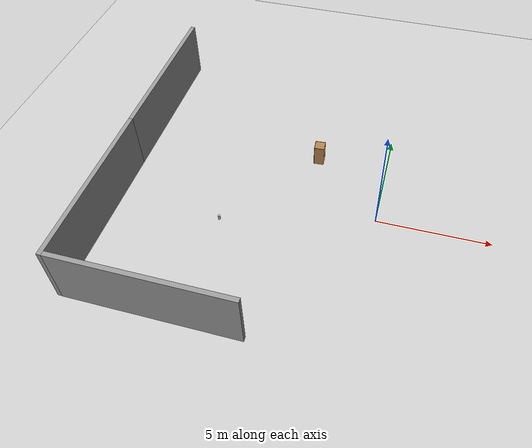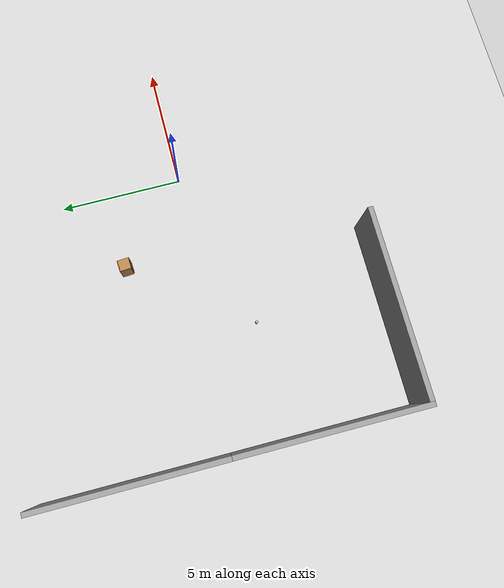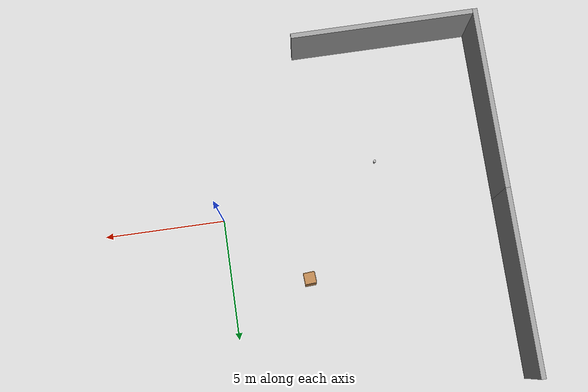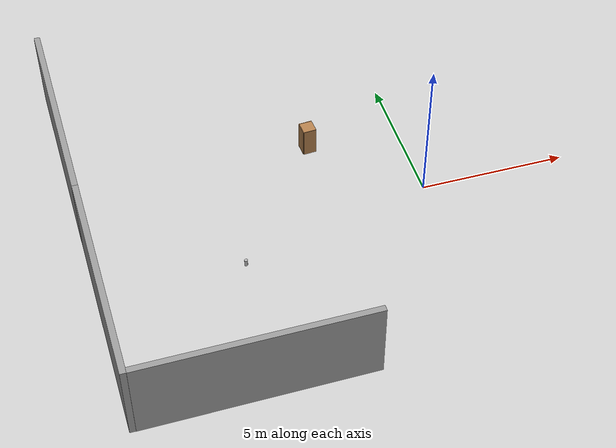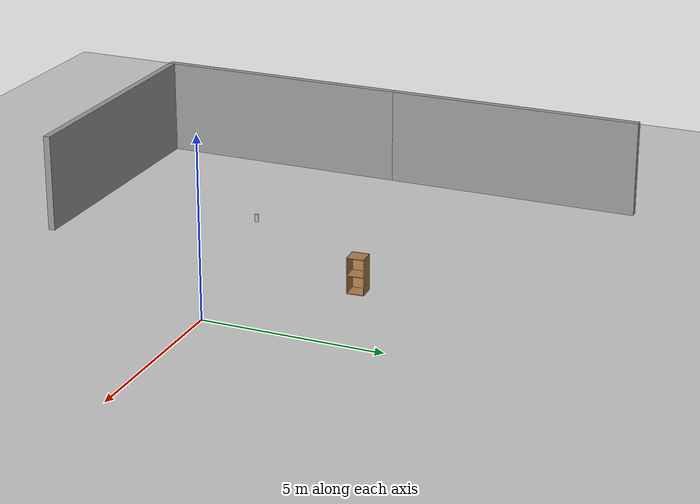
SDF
<sdf version="1.7">
 <world name="default">
  <model name="beer">
   <link name="link">
    <pose>0 0 0.115 0 -0 0</pose>
    <inertial>
     <mass>0.39</mass>
     <inertia><ixx>0.00058</ixx><ixy>0</ixy><ixz>0</ixz><iyy>0.00058</iyy><iyz>0</iyz><izz>0.00019</izz></inertia>
    </inertial>
    <collision name="collision">
     <geometry><cylinder><radius>0.055</radius><length>0.23</length></cylinder></geometry>
    </collision>
    <visual name="visual">
     <geometry><cylinder><radius>0.055</radius><length>0.23</length></cylinder></geometry>
     <material>
      <script>
       <uri>model://beer/materials/scripts</uri>
       <uri>model://beer/materials/textures</uri>
       <name>Beer/Diffuse</name>
      </script>
     </material>
    </visual>
   </link>
   <pose>-6.64479 -1.60953 0.004992 7e-06 2.4e-05 1.97904</pose>
  </model>
  <model name="ball_bearing">
   <link name="link">
    <pose>0 0 0.003 0 -0 0</pose>
    <inertial>
     <mass>0.0011</mass>
     <inertia>
      <ixx>3.96e-09</ixx>
      <ixy>0</ixy>
      <ixz>0</ixz>
      <iyy>3.96e-09</iyy>
      <iyz>0</iyz>
      <izz>3.96e-09</izz>
     </inertia>
    </inertial>
    <collision name="collision">
     <geometry><sphere><radius>0.003</radius></sphere></geometry>
     <surface>
      <contact>
       <poissons_ratio>0.305</poissons_ratio>
       <elastic_modulus>2e+11</elastic_modulus>
       <ode><kp>100000</kp><kd>100</kd><max_vel>100</max_vel><min_depth>0.001</min_depth></ode>
      </contact>
      <friction>
       <torsional>
        <coefficient>1</coefficient>
        <use_patch_radius>0</use_patch_radius>
        <surface_radius>0.01</surface_radius>
       </torsional>
      </friction>
     </surface>
    </collision>
    <visual name="visual">
     <geometry><sphere><radius>0.003</radius></sphere></geometry>
     <material>
      <script><uri>file://media/materials/scripts/gazebo.material</uri><name>Gazebo/Grey</name></script>
     </material>
    </visual>
    <velocity_decay><linear>0</linear><angular>0.005</angular></velocity_decay>
   </link>
   <pose>-8.31361 -2.06934 0.004 0 -0 0</pose>
  </model>
  <model name="grey_wall">
   <static>1</static>
   <link name="link">
    <pose>0 0 1.4 0 -0 0</pose>
    <collision name="collision"><geometry><box><size>7.5 0.2 2.8</size></box></geometry></collision>
    <visual name="visual">
     <cast_shadows>0</cast_shadows>
     <geometry><box><size>7.5 0.2 2.8</size></box></geometry>
     <material>
      <script>
       <uri>model://grey_wall/materials/scripts</uri>
       <uri>model://grey_wall/materials/textures</uri>
       <name>vrc/grey_wall</name>
      </script>
     </material>
    </visual>
   </link>
   <pose>-7.55587 -6.70416 0 0 -0 0</pose>
  </model>
  <model name="grey_wall_clone">
   <static>1</static>
   <link name="link">
    <pose>0 0 1.4 0 -0 0</pose>
    <collision name="collision"><geometry><box><size>7.5 0.2 2.8</size></box></geometry></collision>
    <visual name="visual">
     <cast_shadows>0</cast_shadows>
     <geometry><box><size>7.5 0.2 2.8</size></box></geometry>
     <material>
      <script>
       <uri>model://grey_wall/materials/scripts</uri>
       <uri>model://grey_wall/materials/textures</uri>
       <name>vrc/grey_wall</name>
      </script>
     </material>
    </visual>
   </link>
   <pose>-11.4043 -3.04635 0 0 -0 1.57211</pose>
  </model>
  <model name="grey_wall_clone_clone">
   <static>1</static>
   <link name="link">
    <pose>0 0 1.4 0 -0 0</pose>
    <collision name="collision"><geometry><box><size>7.5 0.2 2.8</size></box></geometry></collision>
    <visual name="visual">
     <cast_shadows>0</cast_shadows>
     <geometry><box><size>7.5 0.2 2.8</size></box></geometry>
     <material>
      <script>
       <uri>model://grey_wall/materials/scripts</uri>
       <uri>model://grey_wall/materials/textures</uri>
       <name>vrc/grey_wall</name>
      </script>
     </material>
    </visual>
   </link>
   <pose>-11.415 4.45274 0 0 -0 1.57211</pose>
  </model>
  <model name="cabinet">
   <static>1</static>
   <link name="cabinet_bottom_plate">
    <inertial>
     <pose>0 0 -1 0 -0 0</pose>
     <inertia><ixx>2.05</ixx><ixy>0</ixy><ixz>0</ixz><iyy>2.05</iyy><iyz>0</iyz><izz>2.05</izz></inertia>
     <mass>25</mass>
    </inertial>
    <collision name="cabinet_bottom_plate_geom">
     <pose>0 0 0.01 0 -0 0</pose>
     <geometry><box><size>0.45 0.45 0.02</size></box></geometry>
    </collision>
    <visual name="cabinet_bottom_plate_geom_visual">
     <pose>0 0 0.01 0 -0 0</pose>
     <geometry><box><size>0.45 0.45 0.02</size></box></geometry>
     <material>
      <script><uri>file://media/materials/scripts/gazebo.material</uri><name>Gazebo/Wood</name></script>
     </material>
    </visual>
    <collision name="cabinet_bottom_plate_geom_cabinet_back_plate">
     <pose>0.235 0 0.51 0 -0 0</pose>
     <geometry><box><size>0.02 0.45 1.02</size></box></geometry>
    </collision>
    <visual name="cabinet_bottom_plate_geom_cabinet_back_plate_visual">
     <pose>0.235 0 0.51 0 -0 0</pose>
     <geometry><box><size>0.02 0.45 1.02</size></box></geometry>
     <material>
      <script><uri>file://media/materials/scripts/gazebo.material</uri><name>Gazebo/Wood</name></script>
     </material>
    </visual>
    <collision name="cabinet_bottom_plate_geom_cabinet_left_plate">
     <pose>0 0.235 0.51 0 -0 0</pose>
     <geometry><box><size>0.45 0.02 1.02</size></box></geometry>
    </collision>
    <visual name="cabinet_bottom_plate_geom_cabinet_left_plate_visual">
     <pose>0 0.235 0.51 0 -0 0</pose>
     <geometry><box><size>0.45 0.02 1.02</size></box></geometry>
     <material>
      <script><uri>file://media/materials/scripts/gazebo.material</uri><name>Gazebo/Wood</name></script>
     </material>
    </visual>
    <collision name="cabinet_bottom_plate_geom_cabinet_middle_plate">
     <pose>0 0 0.51 0 -0 0</pose>
     <geometry><box><size>0.45 0.45 0.02</size></box></geometry>
    </collision>
    <visual name="cabinet_bottom_plate_geom_cabinet_middle_plate_visual">
     <pose>0 0 0.51 0 -0 0</pose>
     <geometry><box><size>0.45 0.45 0.02</size></box></geometry>
     <material>
      <script><uri>file://media/materials/scripts/gazebo.material</uri><name>Gazebo/Wood</name></script>
     </material>
    </visual>
    <collision name="cabinet_bottom_plate_geom_cabinet_right_plate">
     <pose>0 -0.235 0.51 0 -0 0</pose>
     <geometry><box><size>0.45 0.02 1.02</size></box></geometry>
    </collision>
    <visual name="cabinet_bottom_plate_geom_cabinet_right_plate_visual">
     <pose>0 -0.235 0.51 0 -0 0</pose>
     <geometry><box><size>0.45 0.02 1.02</size></box></geometry>
     <material>
      <script><uri>file://media/materials/scripts/gazebo.material</uri><name>Gazebo/Wood</name></script>
     </material>
    </visual>
    <collision name="cabinet_bottom_plate_geom_cabinet_top_plate">
     <pose>0 0 1.01 0 -0 0</pose>
     <geometry><box><size>0.45 0.45 0.02</size></box></geometry>
    </collision>
    <visual name="cabinet_bottom_plate_geom_cabinet_top_plate_visual">
     <pose>0 0 1.01 0 -0 0</pose>
     <geometry><box><size>0.45 0.45 0.02</size></box></geometry>
     <material>
      <script><uri>file://media/materials/scripts/gazebo.material</uri><name>Gazebo/Wood</name></script>
     </material>
    </visual>
   </link>
   <pose>-3.19932 2.97039 0 0 0 -3.07898</pose>
  </model>
  <model name="ground_plane">
   <static>1</static>
   <link name="link">
    <collision name="collision">
     <geometry><plane><normal>0 0 1</normal><size>100 100</size></plane></geometry>
     <surface>
      <contact><collide_bitmask>65535</collide_bitmask></contact>
      <friction><ode><mu>100</mu><mu2>50</mu2></ode></friction>
     </surface>
    </collision>
    <visual name="visual">
     <cast_shadows>0</cast_shadows>
     <geometry><plane><normal>0 0 1</normal><size>100 100</size></plane></geometry>
     <material>
      <script><uri>file://media/materials/scripts/gazebo.material</uri><name>Gazebo/Grey</name></script>
     </material>
    </visual>
   </link>
  </model>
 </world>
</sdf>
